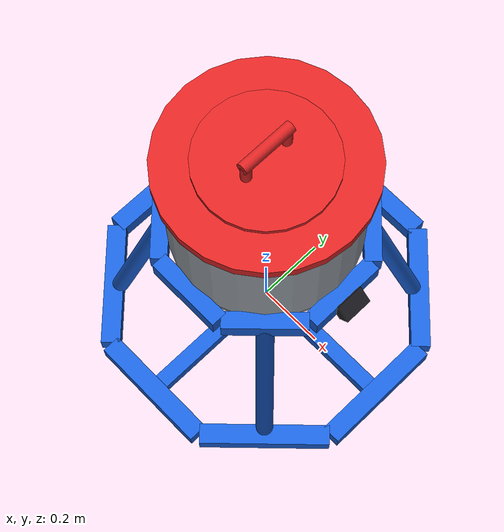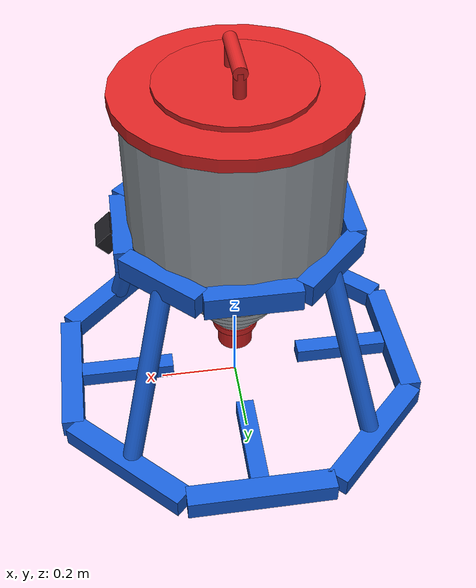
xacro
<?xml version="1.0"?>
<robot xmlns:xacro="http://www.ros.org/wiki/xacro" name="aqua_robot">

  <!-- XACRO PROPERTIES & CONSTANTS                                          -->
  <xacro:property name="M_PI" value="3.1415926535897931" />
  <xacro:property name="DEG2RAD" value="0.017453292519943295" />

  <!-- Base Frame Dimensions (Blue) -->
  <xacro:property name="base_ring_radius" value="0.44" />
  <xacro:property name="base_tube_radius" value="0.028" />
  <xacro:property name="base_z_offset" value="0.04" />
  <xacro:property name="collar_radius" value="0.27" />
  <xacro:property name="collar_z" value="0.52" />

  <!-- Hopper Dimensions (Grey) -->
  <xacro:property name="hopper_cyl_radius" value="0.255" />
  <xacro:property name="hopper_cyl_length" value="0.34" />
  <xacro:property name="hopper_cyl_z" value="0.69" />

  <!-- Top Lid & Bottom Valve Dimensions (Red) -->
  <xacro:property name="top_lid_radius" value="0.275" />
  <xacro:property name="top_lid_thickness" value="0.03" />
  <xacro:property name="top_lid_z" value="0.875" />
  <xacro:property name="valve_radius" value="0.045" />
  <xacro:property name="valve_length" value="0.08" />
  <xacro:property name="valve_z" value="0.145" />

  <!-- RVIZ MATERIALS                                                        -->
  <material name="cad_blue">
    <color rgba="0.10 0.38 0.85 1.0" />
  </material>
  <material name="cad_grey">
    <color rgba="0.62 0.65 0.68 1.0" />
  </material>
  <material name="cad_red">
    <color rgba="0.86 0.14 0.14 1.0" />
  </material>
  <material name="sensor_black">
    <color rgba="0.12 0.12 0.14 1.0" />
  </material>
  <material name="feed_gold">
    <color rgba="0.95 0.72 0.12 1.0" />
  </material>

  <!-- INERTIAL MACROS                                                       -->
  <xacro:macro name="cylinder_inertial" params="mass r h *origin">
    <inertial>
      <xacro:insert_block name="origin" />
      <mass value="${mass}" />
      <inertia ixx="${(1.0/12.0) * mass * (3*r*r + h*h)}" ixy="0.0" ixz="0.0"
               iyy="${(1.0/12.0) * mass * (3*r*r + h*h)}" iyz="0.0"
               izz="${0.5 * mass * r * r}" />
    </inertial>
  </xacro:macro>

  <xacro:macro name="box_inertial" params="mass x y z *origin">
    <inertial>
      <xacro:insert_block name="origin" />
      <mass value="${mass}" />
      <inertia ixx="${(1.0/12.0) * mass * (y*y + z*z)}" ixy="0.0" ixz="0.0"
               iyy="${(1.0/12.0) * mass * (x*x + z*z)}" iyz="0.0"
               izz="${(1.0/12.0) * mass * (x*x + y*y)}" />
    </inertial>
  </xacro:macro>

  <!-- ROOT LINK: base_footprint                                             -->
  <link name="base_footprint" />

  <joint name="base_footprint_joint" type="fixed">
    <parent link="base_footprint" />
    <child link="base_link" />
    <origin xyz="0 0 ${base_z_offset}" rpy="0 0 0" />
  </joint>

  <!-- 1. BASE FRAME (BLUE): Horizontal Ring + 4 Angled Struts + Collar      -->
  <link name="base_link">
    <xacro:cylinder_inertial mass="14.0" r="${base_ring_radius}" h="0.12">
      <origin xyz="0 0 0.05" rpy="0 0 0" />
    </xacro:cylinder_inertial>

    <!-- Bottom Horizontal Structural Ring (8-segment octagonal ring) -->
    <xacro:macro name="ring_segment" params="angle">
      <visual>
        <origin xyz="${base_ring_radius * cos(angle)} ${base_ring_radius * sin(angle)} 0.0"
                rpy="0 0 ${angle + M_PI/2.0}" />
        <geometry>
          <box size="0.36 0.055 0.05" />
        </geometry>
        <material name="cad_blue" />
      </visual>
    </xacro:macro>

    <xacro:ring_segment angle="0.0" />
    <xacro:ring_segment angle="${M_PI/4.0}" />
    <xacro:ring_segment angle="${M_PI/2.0}" />
    <xacro:ring_segment angle="${3.0*M_PI/4.0}" />
    <xacro:ring_segment angle="${M_PI}" />
    <xacro:ring_segment angle="${5.0*M_PI/4.0}" />
    <xacro:ring_segment angle="${3.0*M_PI/2.0}" />
    <xacro:ring_segment angle="${7.0*M_PI/4.0}" />

    <!-- 4 Radial Base Support Cross-Spokes -->
    <visual>
      <origin xyz="0.30 0 0.0" rpy="0 0 0" />
      <geometry>
        <box size="0.26 0.045 0.04" />
      </geometry>
      <material name="cad_blue" />
    </visual>
    <visual>
      <origin xyz="-0.30 0 0.0" rpy="0 0 0" />
      <geometry>
        <box size="0.26 0.045 0.04" />
      </geometry>
      <material name="cad_blue" />
    </visual>
    <visual>
      <origin xyz="0 0.30 0.0" rpy="0 0 0" />
      <geometry>
        <box size="0.045 0.26 0.04" />
      </geometry>
      <material name="cad_blue" />
    </visual>
    <visual>
      <origin xyz="0 -0.30 0.0" rpy="0 0 0" />
      <geometry>
        <box size="0.045 0.26 0.04" />
      </geometry>
      <material name="cad_blue" />
    </visual>

    <!-- 4 Angled Support Struts going upward and inward to the Mounting Collar -->
    <!-- Strut geometry: starts at radius 0.42 (z=0.02) and ends at radius 0.265 (z=0.48) -->
    <!-- Center of each strut is at radius 0.3425, z=0.25, inward tilt = 0.325 rad, length = 0.486m -->
    <xacro:macro name="angled_strut" params="yaw_angle">
      <visual>
        <origin xyz="${0.3425 * cos(yaw_angle)} ${0.3425 * sin(yaw_angle)} 0.25"
                rpy="0 ${-0.325} ${yaw_angle}" />
        <geometry>
          <cylinder radius="0.024" length="0.49" />
        </geometry>
        <material name="cad_blue" />
      </visual>
    </xacro:macro>

    <xacro:angled_strut yaw_angle="${M_PI/4.0}" />
    <xacro:angled_strut yaw_angle="${3.0*M_PI/4.0}" />
    <xacro:angled_strut yaw_angle="${5.0*M_PI/4.0}" />
    <xacro:angled_strut yaw_angle="${7.0*M_PI/4.0}" />

    <!-- Upper Circular Mounting Collar (Blue) at z = 0.48m (relative to base_link) -->
    <xacro:macro name="collar_segment" params="angle">
      <visual>
        <origin xyz="${collar_radius * cos(angle)} ${collar_radius * sin(angle)} 0.48"
                rpy="0 0 ${angle + M_PI/2.0}" />
        <geometry>
          <box size="0.22 0.045 0.055" />
        </geometry>
        <material name="cad_blue" />
      </visual>
    </xacro:macro>

    <xacro:collar_segment angle="0.0" />
    <xacro:collar_segment angle="${M_PI/4.0}" />
    <xacro:collar_segment angle="${M_PI/2.0}" />
    <xacro:collar_segment angle="${3.0*M_PI/4.0}" />
    <xacro:collar_segment angle="${M_PI}" />
    <xacro:collar_segment angle="${5.0*M_PI/4.0}" />
    <xacro:collar_segment angle="${3.0*M_PI/2.0}" />
    <xacro:collar_segment angle="${7.0*M_PI/4.0}" />

    <!-- Base Collision Cylinder -->
    <collision>
      <origin xyz="0 0 0.25" rpy="0 0 0" />
      <geometry>
        <cylinder radius="${base_ring_radius}" length="0.54" />
      </geometry>
    </collision>
  </link>

  <!-- 2. FEED HOPPER (GREY): Cylindrical Tank + Conical Funnel Bottom       -->
  <link name="hopper_link">
    <xacro:cylinder_inertial mass="8.5" r="${hopper_cyl_radius}" h="0.65">
      <origin xyz="0 0 0.50" rpy="0 0 0" />
    </xacro:cylinder_inertial>

    <!-- Upper Cylindrical Tank mounted on the Blue Collar -->
    <visual>
      <origin xyz="0 0 0.65" rpy="0 0 0" />
      <geometry>
        <cylinder radius="${hopper_cyl_radius}" length="${hopper_cyl_length}" />
      </geometry>
      <material name="cad_grey" />
    </visual>

    <!-- Conical Funnel Bottom hanging between the 4 Angled Blue Struts -->
    <!-- Smooth 8-stage tapered frustum from z=0.48 (r=0.250) down to z=0.14 (r=0.052) -->
    <visual>
      <origin xyz="0 0 0.46" rpy="0 0 0" />
      <geometry>
        <cylinder radius="0.245" length="0.045" />
      </geometry>
      <material name="cad_grey" />
    </visual>
    <visual>
      <origin xyz="0 0 0.42" rpy="0 0 0" />
      <geometry>
        <cylinder radius="0.218" length="0.045" />
      </geometry>
      <material name="cad_grey" />
    </visual>
    <visual>
      <origin xyz="0 0 0.38" rpy="0 0 0" />
      <geometry>
        <cylinder radius="0.190" length="0.045" />
      </geometry>
      <material name="cad_grey" />
    </visual>
    <visual>
      <origin xyz="0 0 0.34" rpy="0 0 0" />
      <geometry>
        <cylinder radius="0.162" length="0.045" />
      </geometry>
      <material name="cad_grey" />
    </visual>
    <visual>
      <origin xyz="0 0 0.30" rpy="0 0 0" />
      <geometry>
        <cylinder radius="0.135" length="0.045" />
      </geometry>
      <material name="cad_grey" />
    </visual>
    <visual>
      <origin xyz="0 0 0.26" rpy="0 0 0" />
      <geometry>
        <cylinder radius="0.108" length="0.045" />
      </geometry>
      <material name="cad_grey" />
    </visual>
    <visual>
      <origin xyz="0 0 0.22" rpy="0 0 0" />
      <geometry>
        <cylinder radius="0.080" length="0.045" />
      </geometry>
      <material name="cad_grey" />
    </visual>
    <visual>
      <origin xyz="0 0 0.18" rpy="0 0 0" />
      <geometry>
        <cylinder radius="0.055" length="0.045" />
      </geometry>
      <material name="cad_grey" />
    </visual>

    <collision>
      <origin xyz="0 0 0.55" rpy="0 0 0" />
      <geometry>
        <cylinder radius="${hopper_cyl_radius}" length="0.55" />
      </geometry>
    </collision>
  </link>

  <joint name="hopper_joint" type="fixed">
    <parent link="base_link" />
    <child link="hopper_link" />
    <origin xyz="0 0 0" rpy="0 0 0" />
  </joint>

  <!-- 3. TOP COVER & CENTRAL HANDLE (RED)                                   -->
  <link name="top_cover_link">
    <xacro:cylinder_inertial mass="1.2" r="${top_lid_radius}" h="0.05">
      <origin xyz="0 0 0" rpy="0 0 0" />
    </xacro:cylinder_inertial>

    <!-- Flat Circular Red Lid -->
    <visual>
      <origin xyz="0 0 0.0" rpy="0 0 0" />
      <geometry>
        <cylinder radius="${top_lid_radius}" length="${top_lid_thickness}" />
      </geometry>
      <material name="cad_red" />
    </visual>

    <!-- Raised Inner Rim of Lid -->
    <visual>
      <origin xyz="0 0 0.02" rpy="0 0 0" />
      <geometry>
        <cylinder radius="0.18" length="0.015" />
      </geometry>
      <material name="cad_red" />
    </visual>

    <!-- Central Handle Left Post -->
    <visual>
      <origin xyz="0 0.065 0.05" rpy="0 0 0" />
      <geometry>
        <cylinder radius="0.014" length="0.07" />
      </geometry>
      <material name="cad_red" />
    </visual>

    <!-- Central Handle Right Post -->
    <visual>
      <origin xyz="0 -0.065 0.05" rpy="0 0 0" />
      <geometry>
        <cylinder radius="0.014" length="0.07" />
      </geometry>
      <material name="cad_red" />
    </visual>

    <!-- Central Handle Horizontal Crossbar -->
    <visual>
      <origin xyz="0 0 0.085" rpy="${M_PI/2.0} 0 0" />
      <geometry>
        <cylinder radius="0.016" length="0.155" />
      </geometry>
      <material name="cad_red" />
    </visual>

    <collision>
      <origin xyz="0 0 0.02" rpy="0 0 0" />
      <geometry>
        <cylinder radius="${top_lid_radius}" length="0.08" />
      </geometry>
    </collision>
  </link>

  <joint name="top_cover_joint" type="fixed">
    <parent link="hopper_link" />
    <child link="top_cover_link" />
    <origin xyz="0 0 0.835" rpy="0 0 0" />
  </joint>

  <!-- 4. BOTTOM DISPENSER VALVE / NOZZLE (RED) + ACTUATED VALVE INDICATOR   -->
  <link name="bottom_valve_housing_link">
    <xacro:cylinder_inertial mass="0.6" r="${valve_radius}" h="${valve_length}">
      <origin xyz="0 0 0" rpy="0 0 0" />
    </xacro:cylinder_inertial>

    <!-- Red Cylindrical Dispenser Valve Nozzle at Bottom Tip of Cone -->
    <visual>
      <origin xyz="0 0 0" rpy="0 0 0" />
      <geometry>
        <cylinder radius="${valve_radius}" length="${valve_length}" />
      </geometry>
      <material name="cad_red" />
    </visual>

    <!-- Valve Flange Ring -->
    <visual>
      <origin xyz="0 0 0.03" rpy="0 0 0" />
      <geometry>
        <cylinder radius="0.058" length="0.018" />
      </geometry>
      <material name="cad_red" />
    </visual>

    <collision>
      <origin xyz="0 0 0" rpy="0 0 0" />
      <geometry>
        <cylinder radius="${valve_radius}" length="${valve_length}" />
      </geometry>
    </collision>
  </link>

  <joint name="bottom_valve_housing_joint" type="fixed">
    <parent link="hopper_link" />
    <child link="bottom_valve_housing_link" />
    <origin xyz="0 0 0.125" rpy="0 0 0" />
  </joint>

  <!-- Movable Dispenser Valve Spool / Plunger (Visual Indicator for Opening/Closing) -->
  <link name="feeder_valve_spool_link">
    <xacro:cylinder_inertial mass="0.1" r="0.032" h="0.06">
      <origin xyz="0 0 0" rpy="0 0 0" />
    </xacro:cylinder_inertial>
    <visual>
      <origin xyz="0 0 -0.025" rpy="0 0 0" />
      <geometry>
        <cylinder radius="0.032" length="0.05" />
      </geometry>
      <material name="feed_gold" />
    </visual>
  </link>

  <joint name="feeder_valve_joint" type="prismatic">
    <parent link="bottom_valve_housing_link" />
    <child link="feeder_valve_spool_link" />
    <origin xyz="0 0 0" rpy="0 0 0" />
    <axis xyz="0 0 -1" />
    <limit lower="0.0" upper="0.06" effort="20.0" velocity="0.2" />
    <dynamics damping="5.0" friction="2.0" />
  </joint>

  <!-- 5. SENSORS: DOWNWARD/FORWARD RGB CAMERA & IMU                         -->
  <link name="camera_link">
    <xacro:box_inertial mass="0.15" x="0.05" y="0.08" z="0.05">
      <origin xyz="0 0 0" rpy="0 0 0" />
    </xacro:box_inertial>
    <visual>
      <origin xyz="0 0 0" rpy="0 0 0" />
      <geometry>
        <box size="0.05 0.08 0.04" />
      </geometry>
      <material name="sensor_black" />
    </visual>
  </link>

  <!-- Pitched downward at 0.75 rad (~43 deg) on the front collar to inspect pond floor & fish -->
  <joint name="camera_joint" type="fixed">
    <parent link="base_link" />
    <child link="camera_link" />
    <origin xyz="0.30 0.0 0.48" rpy="0 0.75 0" />
  </joint>

  <link name="camera_optical_link" />
  <joint name="camera_optical_joint" type="fixed">
    <parent link="camera_link" />
    <child link="camera_optical_link" />
    <origin xyz="0 0 0" rpy="${-M_PI/2.0} 0 ${-M_PI/2.0}" />
  </joint>

  <!-- IMU Sensor Link at Robot Center of Gravity -->
  <link name="imu_link">
    <xacro:box_inertial mass="0.05" x="0.03" y="0.03" z="0.015">
      <origin xyz="0 0 0" rpy="0 0 0" />
    </xacro:box_inertial>
    <visual>
      <origin xyz="0 0 0" rpy="0 0 0" />
      <geometry>
        <box size="0.03 0.03 0.015" />
      </geometry>
      <material name="sensor_black" />
    </visual>
  </link>

  <joint name="imu_joint" type="fixed">
    <parent link="base_link" />
    <child link="imu_link" />
    <origin xyz="0 0 0.48" rpy="0 0 0" />
  </joint>

  <!-- GAZEBO COLORS & SURFACE PROPERTIES                                    -->
  <gazebo reference="base_link">
    <material>Gazebo/Blue</material>
    <mu1>0.05</mu1>
    <mu2>0.05</mu2>
  </gazebo>

  <gazebo reference="hopper_link">
    <material>Gazebo/Grey</material>
  </gazebo>

  <gazebo reference="top_cover_link">
    <material>Gazebo/Red</material>
  </gazebo>

  <gazebo reference="bottom_valve_housing_link">
    <material>Gazebo/Red</material>
  </gazebo>

  <gazebo reference="feeder_valve_spool_link">
    <material>Gazebo/Yellow</material>
    <gravity>false</gravity>
  </gazebo>

  <gazebo reference="camera_link">
    <material>Gazebo/Black</material>
  </gazebo>

  <gazebo reference="imu_link">
    <material>Gazebo/Black</material>
  </gazebo>

  <!-- GAZEBO PLUGINS: PLANAR MOVE, CAMERA, IMU                              -->

  <!-- 1. Holonomic / Planar Surface Propulsion Plugin (/cmd_vel -> /odom) -->
  <gazebo>
    <plugin name="aqua_robot_planar_move" filename="libgazebo_ros_planar_move.so">
      <ros>
        <remapping>cmd_vel:=/cmd_vel</remapping>
        <remapping>odom:=/odom</remapping>
      </ros>
      <update_rate>50.0</update_rate>
      <publish_rate>50.0</publish_rate>
      <publish_odom>true</publish_odom>
      <publish_odom_tf>true</publish_odom_tf>
      <odometry_frame>odom</odometry_frame>
      <robot_base_frame>base_footprint</robot_base_frame>
      <covariance_x>0.0001</covariance_x>
      <covariance_y>0.0001</covariance_y>
      <covariance_yaw>0.001</covariance_yaw>
    </plugin>
  </gazebo>

  <!-- 2. Downward/Forward RGB Camera Plugin (/camera/image_raw) -->
  <gazebo reference="camera_link">
    <sensor type="camera" name="fish_monitoring_camera">
      <update_rate>15.0</update_rate>
      <visualize>true</visualize>
      <camera name="head">
        <horizontal_fov>1.3962634</horizontal_fov>
        <image>
          <width>640</width>
          <height>480</height>
          <format>R8G8B8</format>
        </image>
        <clip>
          <near>0.05</near>
          <far>25.0</far>
        </clip>
        <noise>
          <type>gaussian</type>
          <mean>0.0</mean>
          <stddev>0.005</stddev>
        </noise>
      </camera>
      <plugin name="camera_controller" filename="libgazebo_ros_camera.so">
        <ros>
          <remapping>~/image_raw:=/camera/image_raw</remapping>
          <remapping>~/camera_info:=/camera/camera_info</remapping>
        </ros>
        <camera_name>camera</camera_name>
        <frame_name>camera_optical_link</frame_name>
        <hack_baseline>0.07</hack_baseline>
      </plugin>
    </sensor>
  </gazebo>

  <!-- 3. IMU Sensor Plugin (/imu/data) -->
  <gazebo reference="imu_link">
    <gravity>true</gravity>
    <sensor name="aqua_imu_sensor" type="imu">
      <always_on>true</always_on>
      <update_rate>100.0</update_rate>
      <visualize>true</visualize>
      <imu>
        <angular_velocity>
          <x>
            <noise type="gaussian">
              <mean>0.0</mean>
              <stddev>0.001</stddev>
            </noise>
          </x>
          <y>
            <noise type="gaussian">
              <mean>0.0</mean>
              <stddev>0.001</stddev>
            </noise>
          </y>
          <z>
            <noise type="gaussian">
              <mean>0.0</mean>
              <stddev>0.001</stddev>
            </noise>
          </z>
        </angular_velocity>
        <linear_acceleration>
          <x>
            <noise type="gaussian">
              <mean>0.0</mean>
              <stddev>0.01</stddev>
            </noise>
          </x>
          <y>
            <noise type="gaussian">
              <mean>0.0</mean>
              <stddev>0.01</stddev>
            </noise>
          </y>
          <z>
            <noise type="gaussian">
              <mean>0.0</mean>
              <stddev>0.01</stddev>
            </noise>
          </z>
        </linear_acceleration>
      </imu>
      <plugin filename="libgazebo_ros_imu_sensor.so" name="imu_plugin">
        <ros>
          <remapping>~/out:=/imu/data</remapping>
        </ros>
        <frame_name>imu_link</frame_name>
        <initial_orientation_as_reference>false</initial_orientation_as_reference>
      </plugin>
    </sensor>
  </gazebo>

</robot>
